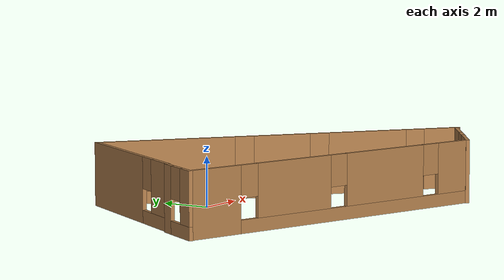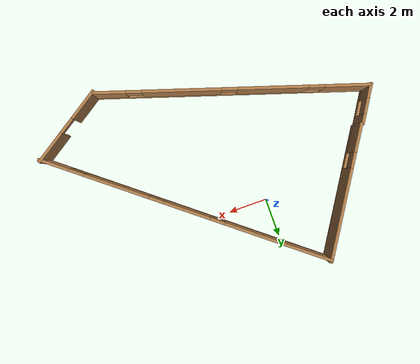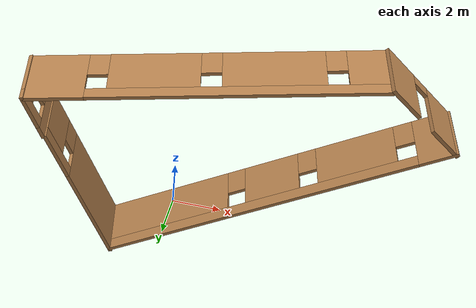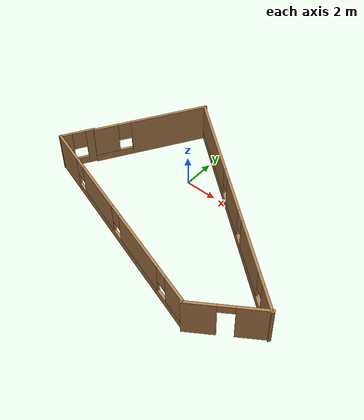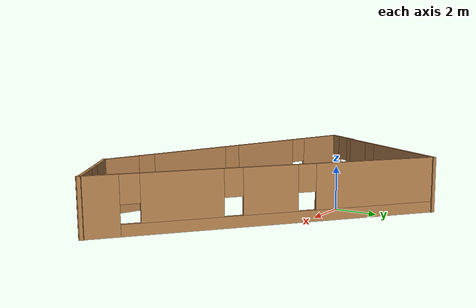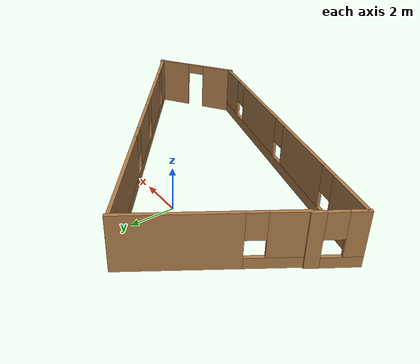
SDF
<?xml version='1.0'?>
<sdf version='1.7'>
  <model name='base_building2'>
    <pose>1.67539 -2.08831 0 0 -0 0</pose>
    <link name='Wall_17'>
      <pose>-1.77862 -3.76927 0 0 -0 -0.314707</pose>
      <visual name='Wall_17_Visual_0'>
        <pose>-5.76828 0 1.25 0 -0 0</pose>
        <geometry>
          <box>
            <size>2.28306 0.15 2.5</size>
          </box>
        </geometry>
        <material>
          <script>
            <uri>file://media/materials/scripts/gazebo.material</uri>
            <name>Gazebo/Wood</name>
          </script>
          <ambient>1 1 1 1</ambient>
        </material>
        <meta>
          <layer>0</layer>
        </meta>
      </visual>
      <collision name='Wall_17_Collision_0'>
        <geometry>
          <box>
            <size>2.28306 0.15 2.5</size>
          </box>
        </geometry>
        <pose>-5.76828 0 1.25 0 -0 0</pose>
      </collision>
      <visual name='Wall_17_Visual_1'>
        <pose>1.14153 0 0.25 0 -0 0</pose>
        <geometry>
          <box>
            <size>11.5366 0.15 0.5</size>
          </box>
        </geometry>
        <material>
          <script>
            <uri>file://media/materials/scripts/gazebo.material</uri>
            <name>Gazebo/Wood</name>
          </script>
          <ambient>1 1 1 1</ambient>
        </material>
        <meta>
          <layer>0</layer>
        </meta>
      </visual>
      <collision name='Wall_17_Collision_1'>
        <geometry>
          <box>
            <size>11.5366 0.15 0.5</size>
          </box>
        </geometry>
        <pose>1.14153 0 0.25 0 -0 0</pose>
      </collision>
      <visual name='Wall_17_Visual_2'>
        <pose>-2.06827 0 1.5 0 -0 0</pose>
        <geometry>
          <box>
            <size>3.51696 0.15 2</size>
          </box>
        </geometry>
        <material>
          <script>
            <uri>file://media/materials/scripts/gazebo.material</uri>
            <name>Gazebo/Wood</name>
          </script>
          <ambient>1 1 1 1</ambient>
        </material>
        <meta>
          <layer>0</layer>
        </meta>
      </visual>
      <collision name='Wall_17_Collision_2'>
        <geometry>
          <box>
            <size>3.51696 0.15 2</size>
          </box>
        </geometry>
        <pose>-2.06827 0 1.5 0 -0 0</pose>
      </collision>
      <visual name='Wall_17_Visual_3'>
        <pose>2.47198 0 1.5 0 -0 0</pose>
        <geometry>
          <box>
            <size>3.96354 0.15 2</size>
          </box>
        </geometry>
        <material>
          <script>
            <uri>file://media/materials/scripts/gazebo.material</uri>
            <name>Gazebo/Wood</name>
          </script>
          <ambient>1 1 1 1</ambient>
        </material>
        <meta>
          <layer>0</layer>
        </meta>
      </visual>
      <collision name='Wall_17_Collision_3'>
        <geometry>
          <box>
            <size>3.96354 0.15 2</size>
          </box>
        </geometry>
        <pose>2.47198 0 1.5 0 -0 0</pose>
      </collision>
      <visual name='Wall_17_Visual_4'>
        <pose>6.08178 0 1.5 0 -0 0</pose>
        <geometry>
          <box>
            <size>1.65606 0.15 2</size>
          </box>
        </geometry>
        <material>
          <script>
            <uri>file://media/materials/scripts/gazebo.material</uri>
            <name>Gazebo/Wood</name>
          </script>
          <ambient>1 1 1 1</ambient>
        </material>
        <meta>
          <layer>0</layer>
        </meta>
      </visual>
      <collision name='Wall_17_Collision_4'>
        <geometry>
          <box>
            <size>1.65606 0.15 2</size>
          </box>
        </geometry>
        <pose>6.08178 0 1.5 0 -0 0</pose>
      </collision>
      <visual name='Wall_17_Visual_5'>
        <pose>-4.22675 0 1.9 0 -0 0</pose>
        <geometry>
          <box>
            <size>0.8 0.15 1.2</size>
          </box>
        </geometry>
        <material>
          <script>
            <uri>file://media/materials/scripts/gazebo.material</uri>
            <name>Gazebo/Wood</name>
          </script>
          <ambient>1 1 1 1</ambient>
        </material>
        <meta>
          <layer>0</layer>
        </meta>
      </visual>
      <collision name='Wall_17_Collision_5'>
        <geometry>
          <box>
            <size>0.8 0.15 1.2</size>
          </box>
        </geometry>
        <pose>-4.22675 0 1.9 0 -0 0</pose>
      </collision>
      <visual name='Wall_17_Visual_6'>
        <pose>0.090209 0 1.9 0 -0 0</pose>
        <geometry>
          <box>
            <size>0.8 0.15 1.2</size>
          </box>
        </geometry>
        <material>
          <script>
            <uri>file://media/materials/scripts/gazebo.material</uri>
            <name>Gazebo/Wood</name>
          </script>
          <ambient>1 1 1 1</ambient>
        </material>
        <meta>
          <layer>0</layer>
        </meta>
      </visual>
      <collision name='Wall_17_Collision_6'>
        <geometry>
          <box>
            <size>0.8 0.15 1.2</size>
          </box>
        </geometry>
        <pose>0.090209 0 1.9 0 -0 0</pose>
      </collision>
      <visual name='Wall_17_Visual_7'>
        <pose>4.85375 0 1.9 0 -0 0</pose>
        <geometry>
          <box>
            <size>0.8 0.15 1.2</size>
          </box>
        </geometry>
        <material>
          <script>
            <uri>file://media/materials/scripts/gazebo.material</uri>
            <name>Gazebo/Wood</name>
          </script>
          <ambient>1 1 1 1</ambient>
        </material>
        <meta>
          <layer>0</layer>
        </meta>
      </visual>
      <collision name='Wall_17_Collision_7'>
        <geometry>
          <box>
            <size>0.8 0.15 1.2</size>
          </box>
        </geometry>
        <pose>4.85375 0 1.9 0 -0 0</pose>
      </collision>
    </link>
    <link name='Wall_18'>
      <pose>6.53865 -4.78362 0 0 -0 0.576712</pose>
      <visual name='Wall_18_Visual_0'>
        <pose>-1.36226 0 1.25 0 -0 0</pose>
        <geometry>
          <box>
            <size>1.76334 0.15 2.5</size>
          </box>
        </geometry>
        <material>
          <script>
            <uri>file://media/materials/scripts/gazebo.material</uri>
            <name>Gazebo/Wood</name>
          </script>
          <ambient>1 1 1 1</ambient>
        </material>
        <meta>
          <layer>0</layer>
        </meta>
      </visual>
      <collision name='Wall_18_Collision_0'>
        <geometry>
          <box>
            <size>1.76334 0.15 2.5</size>
          </box>
        </geometry>
        <pose>-1.36226 0 1.25 0 -0 0</pose>
      </collision>
      <visual name='Wall_18_Visual_1'>
        <pose>1.33167 0 1.25 0 -0 0</pose>
        <geometry>
          <box>
            <size>1.82453 0.15 2.5</size>
          </box>
        </geometry>
        <material>
          <script>
            <uri>file://media/materials/scripts/gazebo.material</uri>
            <name>Gazebo/Wood</name>
          </script>
          <ambient>1 1 1 1</ambient>
        </material>
        <meta>
          <layer>0</layer>
        </meta>
      </visual>
      <collision name='Wall_18_Collision_1'>
        <geometry>
          <box>
            <size>1.82453 0.15 2.5</size>
          </box>
        </geometry>
        <pose>1.33167 0 1.25 0 -0 0</pose>
      </collision>
      <visual name='Wall_18_Visual_2'>
        <pose>-0.030593 0 2.25 0 -0 0</pose>
        <geometry>
          <box>
            <size>0.9 0.15 0.5</size>
          </box>
        </geometry>
        <material>
          <script>
            <uri>file://media/materials/scripts/gazebo.material</uri>
            <name>Gazebo/Wood</name>
          </script>
          <ambient>1 1 1 1</ambient>
        </material>
        <meta>
          <layer>0</layer>
        </meta>
      </visual>
      <collision name='Wall_18_Collision_2'>
        <geometry>
          <box>
            <size>0.9 0.15 0.5</size>
          </box>
        </geometry>
        <pose>-0.030593 0 2.25 0 -0 0</pose>
      </collision>
    </link>
    <link name='Wall_19'>
      <pose>2.40675 1.1015 0 0 -0 2.46442</pose>
      <visual name='Wall_19_Visual_0'>
        <pose>-6.90449 0 1.25 0 -0 0</pose>
        <geometry>
          <box>
            <size>1.61033 0.15 2.5</size>
          </box>
        </geometry>
        <material>
          <script>
            <uri>file://media/materials/scripts/gazebo.material</uri>
            <name>Gazebo/Wood</name>
          </script>
          <ambient>1 1 1 1</ambient>
        </material>
        <meta>
          <layer>0</layer>
        </meta>
      </visual>
      <collision name='Wall_19_Collision_0'>
        <geometry>
          <box>
            <size>1.61033 0.15 2.5</size>
          </box>
        </geometry>
        <pose>-6.90449 0 1.25 0 -0 0</pose>
      </collision>
      <visual name='Wall_19_Visual_1'>
        <pose>0.805164 0 0.25 0 -0 0</pose>
        <geometry>
          <box>
            <size>13.809 0.15 0.5</size>
          </box>
        </geometry>
        <material>
          <script>
            <uri>file://media/materials/scripts/gazebo.material</uri>
            <name>Gazebo/Wood</name>
          </script>
          <ambient>1 1 1 1</ambient>
        </material>
        <meta>
          <layer>0</layer>
        </meta>
      </visual>
      <collision name='Wall_19_Collision_1'>
        <geometry>
          <box>
            <size>13.809 0.15 0.5</size>
          </box>
        </geometry>
        <pose>0.805164 0 0.25 0 -0 0</pose>
      </collision>
      <visual name='Wall_19_Visual_2'>
        <pose>-3.60591 0 1.5 0 -0 0</pose>
        <geometry>
          <box>
            <size>3.38684 0.15 2</size>
          </box>
        </geometry>
        <material>
          <script>
            <uri>file://media/materials/scripts/gazebo.material</uri>
            <name>Gazebo/Wood</name>
          </script>
          <ambient>1 1 1 1</ambient>
        </material>
        <meta>
          <layer>0</layer>
        </meta>
      </visual>
      <collision name='Wall_19_Collision_2'>
        <geometry>
          <box>
            <size>3.38684 0.15 2</size>
          </box>
        </geometry>
        <pose>-3.60591 0 1.5 0 -0 0</pose>
      </collision>
      <visual name='Wall_19_Visual_3'>
        <pose>0.085967 0 1.5 0 -0 0</pose>
        <geometry>
          <box>
            <size>2.3969 0.15 2</size>
          </box>
        </geometry>
        <material>
          <script>
            <uri>file://media/materials/scripts/gazebo.material</uri>
            <name>Gazebo/Wood</name>
          </script>
          <ambient>1 1 1 1</ambient>
        </material>
        <meta>
          <layer>0</layer>
        </meta>
      </visual>
      <collision name='Wall_19_Collision_3'>
        <geometry>
          <box>
            <size>2.3969 0.15 2</size>
          </box>
        </geometry>
        <pose>0.085967 0 1.5 0 -0 0</pose>
      </collision>
      <visual name='Wall_19_Visual_4'>
        <pose>4.89704 0 1.5 0 -0 0</pose>
        <geometry>
          <box>
            <size>5.62524 0.15 2</size>
          </box>
        </geometry>
        <material>
          <script>
            <uri>file://media/materials/scripts/gazebo.material</uri>
            <name>Gazebo/Wood</name>
          </script>
          <ambient>1 1 1 1</ambient>
        </material>
        <meta>
          <layer>0</layer>
        </meta>
      </visual>
      <collision name='Wall_19_Collision_4'>
        <geometry>
          <box>
            <size>5.62524 0.15 2</size>
          </box>
        </geometry>
        <pose>4.89704 0 1.5 0 -0 0</pose>
      </collision>
      <visual name='Wall_19_Visual_5'>
        <pose>-5.69933 0 1.9 0 -0 0</pose>
        <geometry>
          <box>
            <size>0.8 0.15 1.2</size>
          </box>
        </geometry>
        <material>
          <script>
            <uri>file://media/materials/scripts/gazebo.material</uri>
            <name>Gazebo/Wood</name>
          </script>
          <ambient>1 1 1 1</ambient>
        </material>
        <meta>
          <layer>0</layer>
        </meta>
      </visual>
      <collision name='Wall_19_Collision_5'>
        <geometry>
          <box>
            <size>0.8 0.15 1.2</size>
          </box>
        </geometry>
        <pose>-5.69933 0 1.9 0 -0 0</pose>
      </collision>
      <visual name='Wall_19_Visual_6'>
        <pose>-1.51248 0 1.9 0 -0 0</pose>
        <geometry>
          <box>
            <size>0.8 0.15 1.2</size>
          </box>
        </geometry>
        <material>
          <script>
            <uri>file://media/materials/scripts/gazebo.material</uri>
            <name>Gazebo/Wood</name>
          </script>
          <ambient>1 1 1 1</ambient>
        </material>
        <meta>
          <layer>0</layer>
        </meta>
      </visual>
      <collision name='Wall_19_Collision_6'>
        <geometry>
          <box>
            <size>0.8 0.15 1.2</size>
          </box>
        </geometry>
        <pose>-1.51248 0 1.9 0 -0 0</pose>
      </collision>
      <visual name='Wall_19_Visual_7'>
        <pose>1.68442 0 1.9 0 -0 0</pose>
        <geometry>
          <box>
            <size>0.8 0.15 1.2</size>
          </box>
        </geometry>
        <material>
          <script>
            <uri>file://media/materials/scripts/gazebo.material</uri>
            <name>Gazebo/Wood</name>
          </script>
          <ambient>1 1 1 1</ambient>
        </material>
        <meta>
          <layer>0</layer>
        </meta>
      </visual>
      <collision name='Wall_19_Collision_7'>
        <geometry>
          <box>
            <size>0.8 0.15 1.2</size>
          </box>
        </geometry>
        <pose>1.68442 0 1.9 0 -0 0</pose>
      </collision>
    </link>
    <link name='Wall_20'>
      <pose>-5.38989 3.00835 0 0 -0 -2.12882</pose>
      <visual name='Wall_20_Visual_0'>
        <pose>-1.15048 0 1.25 0 -0 0</pose>
        <geometry>
          <box>
            <size>4.82379 0.15 2.5</size>
          </box>
        </geometry>
        <material>
          <script>
            <uri>file://media/materials/scripts/gazebo.material</uri>
            <name>Gazebo/Wood</name>
          </script>
          <ambient>1 1 1 1</ambient>
        </material>
        <meta>
          <layer>0</layer>
        </meta>
      </visual>
      <collision name='Wall_20_Collision_0'>
        <geometry>
          <box>
            <size>4.82379 0.15 2.5</size>
          </box>
        </geometry>
        <pose>-1.15048 0 1.25 0 -0 0</pose>
      </collision>
      <visual name='Wall_20_Visual_1'>
        <pose>2.4119 0 0.25 0 -0 0</pose>
        <geometry>
          <box>
            <size>2.30095 0.15 0.5</size>
          </box>
        </geometry>
        <material>
          <script>
            <uri>file://media/materials/scripts/gazebo.material</uri>
            <name>Gazebo/Wood</name>
          </script>
          <ambient>1 1 1 1</ambient>
        </material>
        <meta>
          <layer>0</layer>
        </meta>
      </visual>
      <collision name='Wall_20_Collision_1'>
        <geometry>
          <box>
            <size>2.30095 0.15 0.5</size>
          </box>
        </geometry>
        <pose>2.4119 0 0.25 0 -0 0</pose>
      </collision>
      <visual name='Wall_20_Visual_2'>
        <pose>2.8119 0 1.5 0 -0 0</pose>
        <geometry>
          <box>
            <size>1.50095 0.15 2</size>
          </box>
        </geometry>
        <material>
          <script>
            <uri>file://media/materials/scripts/gazebo.material</uri>
            <name>Gazebo/Wood</name>
          </script>
          <ambient>1 1 1 1</ambient>
        </material>
        <meta>
          <layer>0</layer>
        </meta>
      </visual>
      <collision name='Wall_20_Collision_2'>
        <geometry>
          <box>
            <size>1.50095 0.15 2</size>
          </box>
        </geometry>
        <pose>2.8119 0 1.5 0 -0 0</pose>
      </collision>
      <visual name='Wall_20_Visual_3'>
        <pose>1.66142 0 1.9 0 -0 0</pose>
        <geometry>
          <box>
            <size>0.8 0.15 1.2</size>
          </box>
        </geometry>
        <material>
          <script>
            <uri>file://media/materials/scripts/gazebo.material</uri>
            <name>Gazebo/Wood</name>
          </script>
          <ambient>1 1 1 1</ambient>
        </material>
        <meta>
          <layer>0</layer>
        </meta>
      </visual>
      <collision name='Wall_20_Collision_3'>
        <geometry>
          <box>
            <size>0.8 0.15 1.2</size>
          </box>
        </geometry>
        <pose>1.66142 0 1.9 0 -0 0</pose>
      </collision>
    </link>
    <link name='Wall_21'>
      <pose>-7.83849 -0.801814 0 0 -0 -2.11941</pose>
      <visual name='Wall_21_Visual_0'>
        <pose>-0.787906 0 1.25 0 -0 0</pose>
        <geometry>
          <box>
            <size>0.570834 0.15 2.5</size>
          </box>
        </geometry>
        <material>
          <script>
            <uri>file://media/materials/scripts/gazebo.material</uri>
            <name>Gazebo/Wood</name>
          </script>
          <ambient>1 1 1 1</ambient>
        </material>
        <meta>
          <layer>0</layer>
        </meta>
      </visual>
      <collision name='Wall_21_Collision_0'>
        <geometry>
          <box>
            <size>0.570834 0.15 2.5</size>
          </box>
        </geometry>
        <pose>-0.787906 0 1.25 0 -0 0</pose>
      </collision>
      <visual name='Wall_21_Visual_1'>
        <pose>0.285417 0 0.25 0 -0 0</pose>
        <geometry>
          <box>
            <size>1.57581 0.15 0.5</size>
          </box>
        </geometry>
        <material>
          <script>
            <uri>file://media/materials/scripts/gazebo.material</uri>
            <name>Gazebo/Wood</name>
          </script>
          <ambient>1 1 1 1</ambient>
        </material>
        <meta>
          <layer>0</layer>
        </meta>
      </visual>
      <collision name='Wall_21_Collision_1'>
        <geometry>
          <box>
            <size>1.57581 0.15 0.5</size>
          </box>
        </geometry>
        <pose>0.285417 0 0.25 0 -0 0</pose>
      </collision>
      <visual name='Wall_21_Visual_2'>
        <pose>0.685417 0 1.5 0 -0 0</pose>
        <geometry>
          <box>
            <size>0.775812 0.15 2</size>
          </box>
        </geometry>
        <material>
          <script>
            <uri>file://media/materials/scripts/gazebo.material</uri>
            <name>Gazebo/Wood</name>
          </script>
          <ambient>1 1 1 1</ambient>
        </material>
        <meta>
          <layer>0</layer>
        </meta>
      </visual>
      <collision name='Wall_21_Collision_2'>
        <geometry>
          <box>
            <size>0.775812 0.15 2</size>
          </box>
        </geometry>
        <pose>0.685417 0 1.5 0 -0 0</pose>
      </collision>
      <visual name='Wall_21_Visual_3'>
        <pose>-0.102489 0 1.9 0 -0 0</pose>
        <geometry>
          <box>
            <size>0.8 0.15 1.2</size>
          </box>
        </geometry>
        <material>
          <script>
            <uri>file://media/materials/scripts/gazebo.material</uri>
            <name>Gazebo/Wood</name>
          </script>
          <ambient>1 1 1 1</ambient>
        </material>
        <meta>
          <layer>0</layer>
        </meta>
      </visual>
      <collision name='Wall_21_Collision_3'>
        <geometry>
          <box>
            <size>0.8 0.15 1.2</size>
          </box>
        </geometry>
        <pose>-0.102489 0 1.9 0 -0 0</pose>
      </collision>
    </link>
    <static>1</static>
  </model>
</sdf>
